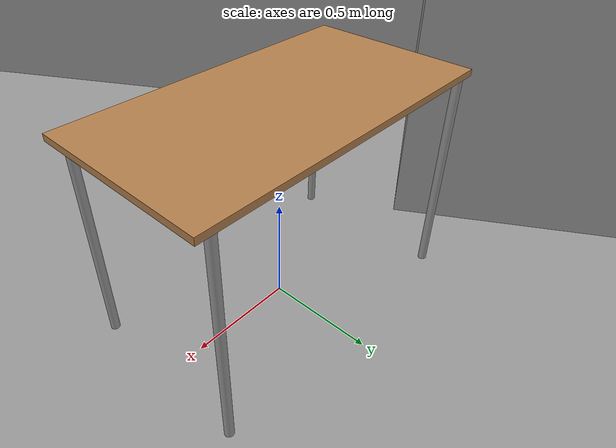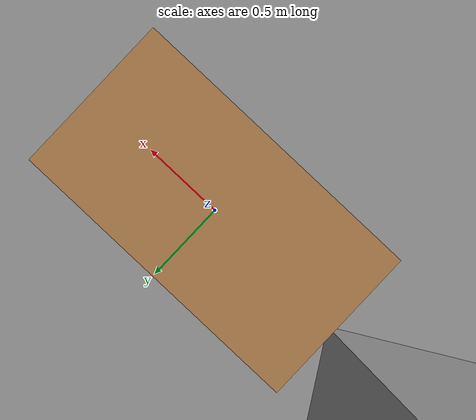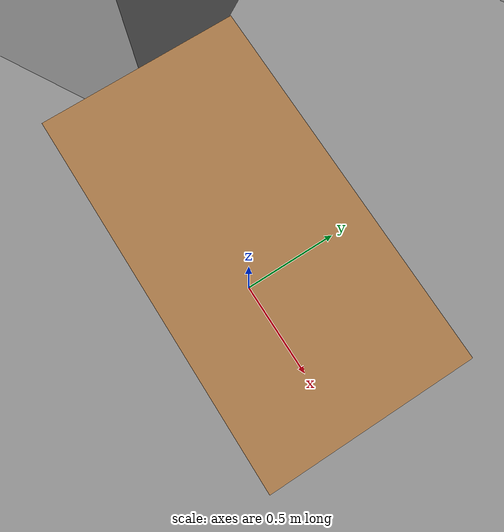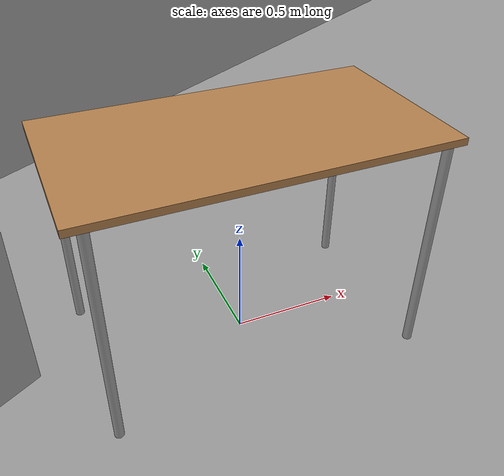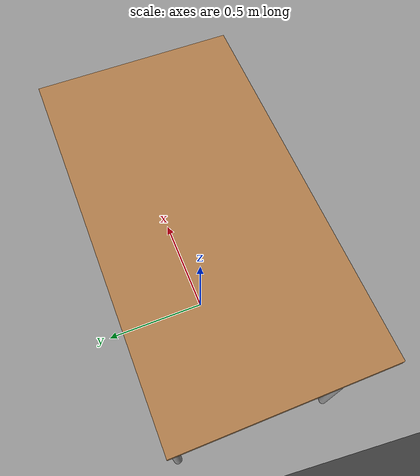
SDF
<sdf version="1.6">
 <world name="__default__">
  <gravity>0 0 -9.8</gravity>
  <magnetic_field>6e-06 2.3e-05 -4.2e-05</magnetic_field>
  <atmosphere type="adiabatic"/>
  <physics name="default_physics" default="0" type="ode">
   <max_step_size>0.001</max_step_size>
   <real_time_factor>1</real_time_factor>
   <real_time_update_rate>1000</real_time_update_rate>
  </physics>
  <scene><ambient>0.4 0.4 0.4 1</ambient><background>0.7 0.7 0.7 1</background><shadows>1</shadows></scene>
  <spherical_coordinates>
   <surface_model>EARTH_WGS84</surface_model>
   <latitude_deg>0</latitude_deg>
   <longitude_deg>0</longitude_deg>
   <elevation>0</elevation>
   <heading_deg>0</heading_deg>
  </spherical_coordinates>
  <include name="ground_plane" static="1"><uri>file://models/ground_plane</uri></include>
  <include name="sun" static="1"><uri>file://models/sun</uri></include>
  <include name="AtkHall6thFloor" static="1">
   <uri>model://AtkHall6thFloor</uri>
   <pose>-167. -118. 0 0 0 0</pose>
  </include>
  <include name="table"><uri>model://table</uri></include>
 </world>
</sdf>

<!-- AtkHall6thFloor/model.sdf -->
<sdf version='1.6'>
  <model name='AtkHall6thFloor'>
    <link name='link_0'>
      <inertial>
        <mass>1</mass>
        <inertia>
          <ixx>0.166667</ixx>
          <ixy>0</ixy>
          <ixz>0</ixz>
          <iyy>0.166667</iyy>
          <iyz>0</iyz>
          <izz>0.166667</izz>
        </inertia>
        <pose frame=''>0 0 0 0 -0 0</pose>
      </inertial>
      <pose frame=''>0 0 0 0 -0 0</pose>
      <gravity>1</gravity>
      <self_collide>0</self_collide>
      <kinematic>0</kinematic>
      <enable_wind>0</enable_wind>
      <visual name='visual'>
        <pose frame=''>0 0 0 0 -0 0</pose>
        <geometry>
          <mesh>
            <uri>model://AtkHall6thFloor/model/AtkHall6thFloor.stl</uri>
            <scale>0.05 0.05 0.05</scale>
          </mesh>
        </geometry>
        <material>
          <lighting>1</lighting>
          <script>
            <uri>file://media/materials/scripts/gazebo.material</uri>
            <name>Gazebo/Grey</name>
          </script>
          <shader type='pixel'>
            <normal_map>__default__</normal_map>
          </shader>
          <ambient>0.3 0.3 0.3 1</ambient>
          <diffuse>0.7 0.7 0.7 1</diffuse>
          <specular>0.01 0.01 0.01 1</specular>
          <emissive>0 0 0 1</emissive>
        </material>
        <transparency>0</transparency>
        <cast_shadows>1</cast_shadows>
      </visual>
      <collision name='collision'>
        <laser_retro>0</laser_retro>
        <max_contacts>10</max_contacts>
        <pose frame=''>0 0 0 0 -0 0</pose>
        <geometry>
          <mesh>
            <uri>model://AtkHall6thFloor/model/AtkHall6thFloor.stl</uri>
            <scale>0.05 0.05 0.05</scale>
          </mesh>
        </geometry>
        <surface>
          <friction>
            <ode>
              <mu>1</mu>
              <mu2>1</mu2>
              <fdir1>0 0 0</fdir1>
              <slip1>0</slip1>
              <slip2>0</slip2>
            </ode>
            <torsional>
              <coefficient>1</coefficient>
              <patch_radius>0</patch_radius>
              <surface_radius>0</surface_radius>
              <use_patch_radius>1</use_patch_radius>
              <ode>
                <slip>0</slip>
              </ode>
            </torsional>
          </friction>
          <bounce>
            <restitution_coefficient>0</restitution_coefficient>
            <threshold>1e+06</threshold>
          </bounce>
          <contact>
            <collide_without_contact>0</collide_without_contact>
            <collide_without_contact_bitmask>1</collide_without_contact_bitmask>
            <collide_bitmask>1</collide_bitmask>
            <ode>
              <soft_cfm>0</soft_cfm>
              <soft_erp>0.2</soft_erp>
              <kp>1e+13</kp>
              <kd>1</kd>
              <max_vel>0.01</max_vel>
              <min_depth>0</min_depth>
            </ode>
            <bullet>
              <split_impulse>1</split_impulse>
              <split_impulse_penetration_threshold>-0.01</split_impulse_penetration_threshold>
              <soft_cfm>0</soft_cfm>
              <soft_erp>0.2</soft_erp>
              <kp>1e+13</kp>
              <kd>1</kd>
            </bullet>
          </contact>
        </surface>
      </collision>
    </link>
    <static>1</static>
    <allow_auto_disable>1</allow_auto_disable>
  </model>
</sdf>

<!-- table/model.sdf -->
<sdf version="1.5">
  <model name="table">
    <static>true</static>
    <link name="link">
      <collision name="surface">
        <pose>0 0 1.0 0 0 0</pose>
        <geometry>
          <box>
            <size>1.5 0.8 0.03</size>
          </box>
        </geometry>
        <surface>
          <friction>
            <ode>
              <mu>0.6</mu>
              <mu2>0.6</mu2>
            </ode>
          </friction>
        </surface>
      </collision>
      <visual name="visual1">
        <pose>0 0 1.0 0 0 0</pose>
        <geometry>
          <box>
            <size>1.5 0.8 0.03</size>
          </box>
        </geometry>
        <material>
          <script>
            <uri>model://media/materials/scripts/gazebo.material</uri>
            <name>Gazebo/Wood</name>
          </script>
        </material>
      </visual>
      <collision name="front_left_leg">
        <pose>0.68 0.38 0.5 0 0 0</pose>
        <geometry>
          <cylinder>
            <radius>0.02</radius>
            <length>1.0</length>
          </cylinder>
        </geometry>
      </collision>
      <visual name="front_left_leg">
        <pose>0.68 0.38 0.5 0 0 0</pose>
        <geometry>
          <cylinder>
            <radius>0.02</radius>
            <length>1.0</length>
          </cylinder>
        </geometry>
        <material>
          <script>
            <uri>model://media/materials/scripts/gazebo.material</uri>
            <name>Gazebo/Grey</name>
          </script>
        </material>
      </visual>
      <collision name="front_right_leg">
        <pose>0.68 -0.38 0.5 0 0 0</pose>
        <geometry>
          <cylinder>
            <radius>0.02</radius>
            <length>1.0</length>
          </cylinder>
        </geometry>
      </collision>
      <visual name="front_right_leg">
        <pose>0.68 -0.38 0.5 0 0 0</pose>
        <geometry>
          <cylinder>
            <radius>0.02</radius>
            <length>1.0</length>
          </cylinder>
        </geometry>
        <material>
          <script>
            <uri>model://media/materials/scripts/gazebo.material</uri>
            <name>Gazebo/Grey</name>
          </script>
        </material>
      </visual>
      <collision name="back_right_leg">
        <pose>-0.68 -0.38 0.5 0 0 0</pose>
        <geometry>
          <cylinder>
            <radius>0.02</radius>
            <length>1.0</length>
          </cylinder>
        </geometry>
      </collision>
      <visual name="back_right_leg">
        <pose>-0.68 -0.38 0.5 0 0 0</pose>
        <geometry>
          <cylinder>
            <radius>0.02</radius>
            <length>1.0</length>
          </cylinder>
        </geometry>
        <material>
          <script>
            <uri>model://media/materials/scripts/gazebo.material</uri>
            <name>Gazebo/Grey</name>
          </script>
        </material>
      </visual>
      <collision name="back_left_leg">
        <pose>-0.68 0.38 0.5 0 0 0</pose>
        <geometry>
          <cylinder>
            <radius>0.02</radius>
            <length>1.0</length>
          </cylinder>
        </geometry>
      </collision>
      <visual name="back_left_leg">
        <pose>-0.68 0.38 0.5 0 0 0</pose>
        <geometry>
          <cylinder>
            <radius>0.02</radius>
            <length>1.0</length>
          </cylinder>
        </geometry>
        <material>
          <script>
            <uri>model://media/materials/scripts/gazebo.material</uri>
            <name>Gazebo/Grey</name>
          </script>
        </material>
      </visual>
    </link>
  </model>
</sdf>
